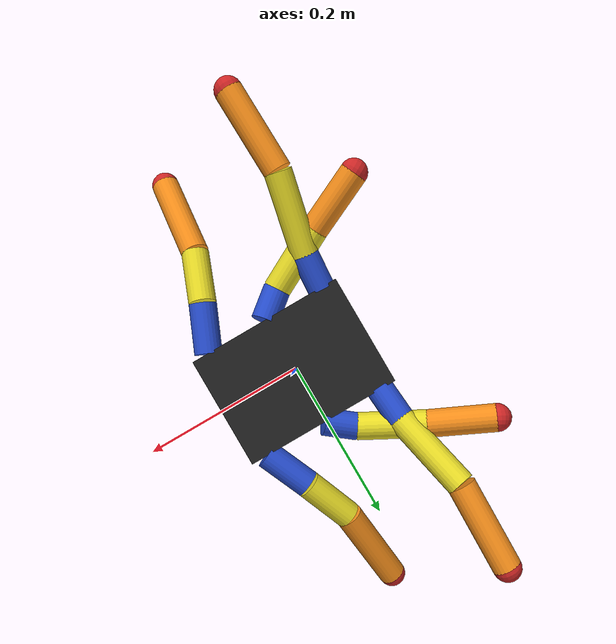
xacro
<?xml version="1.0"?>
<robot name="multi_legged_robot" xmlns:xacro="http://ros.org/wiki/xacro">

  <xacro:include filename="$(find multi_legged_description)/urdf/base/base.urdf.xacro"/>
  <xacro:include filename="$(find multi_legged_description)/urdf/leg/leg.urdf.xacro"/>
  <xacro:include filename="$(find multi_legged_description)/urdf/params/robot10.xacro"/>

  <!-- ===============  Link & Joint =============== -->
  <!-- Base -->
  <link name="base_footprint"/>
  <xacro:base parent="base_footprint"
              length="${body_length}"
              width="${body_width}"
              height="${body_height}"
              rho="${body_rho}">
  <!-- respawn point -->
	<origin xyz="0 0 ${body_height+base_clause_radius/2+LM_tibia_length+appendix_radius+0.01}"/>
  </xacro:base>

  <!-- LEG -->
  <xacro:leg prefix="LF" parent="base_link" origin_xyz="${body_length*2/5} ${body_width/2} ${-body_height/2-base_clause_radius/2}" origin_rpy="0.0 0.0 ${M_PI/2}"
             base_clause_radius="${base_clause_radius}" base_clause_length="${LF_base_clause_length}" base_clause_rpy="${LF_base_clause_rpy}" base_clause_rho="${base_clause_rho}" base_clause_torque="${base_clause_torque}" base_clause_velocity="${base_clause_velocity}"
             thigh_radius="${thigh_radius}" thigh_length="${LF_thigh_length}" thigh_rpy="${LF_thigh_rpy}" thigh_rho="${thigh_rho}" thigh_torque="${thigh_torque}" thigh_velocity="${thigh_velocity}"
             tibia_radius="${tibia_radius}" tibia_length="${LF_tibia_length}" tibia_rpy="${LF_tibia_rpy}" tibia_rho="${tibia_rho}" tibia_torque="${tibia_torque}" tibia_velocity="${tibia_velocity}"
             appendix_radius="${appendix_radius}" appendix_rho="${appendix_rho}"/>
  <xacro:leg prefix="LM" parent="base_link" origin_xyz="0.0 ${body_width/2} ${-body_height/2-base_clause_radius/2}" origin_rpy="0.0 0.0 ${M_PI/2}"
             base_clause_radius="${base_clause_radius}" base_clause_length="${LM_base_clause_length}" base_clause_rpy="${LM_base_clause_rpy}" base_clause_rho="${base_clause_rho}" base_clause_torque="${base_clause_torque}" base_clause_velocity="${base_clause_velocity}"
             thigh_radius="${thigh_radius}" thigh_length="${LM_thigh_length}" thigh_rpy="${LM_thigh_rpy}" thigh_rho="${thigh_rho}" thigh_torque="${thigh_torque}" thigh_velocity="${thigh_velocity}"
             tibia_radius="${tibia_radius}" tibia_length="${LM_tibia_length}" tibia_rpy="${LM_tibia_rpy}" tibia_rho="${tibia_rho}" tibia_torque="${tibia_torque}" tibia_velocity="${tibia_velocity}"
             appendix_radius="${appendix_radius}" appendix_rho="${appendix_rho}"/>
	<xacro:leg prefix="LH" parent="base_link" origin_xyz="${-body_length*2/5} ${body_width/2} ${-body_height/2-base_clause_radius/2}" origin_rpy="0.0 0.0 ${M_PI/2}"
             base_clause_radius="${base_clause_radius}" base_clause_length="${LH_base_clause_length}" base_clause_rpy="${LH_base_clause_rpy}" base_clause_rho="${base_clause_rho}" base_clause_torque="${base_clause_torque}" base_clause_velocity="${base_clause_velocity}"
             thigh_radius="${thigh_radius}" thigh_length="${LH_thigh_length}" thigh_rpy="${LH_thigh_rpy}" thigh_rho="${thigh_rho}" thigh_torque="${thigh_torque}" thigh_velocity="${thigh_velocity}"
             tibia_radius="${tibia_radius}" tibia_length="${LH_tibia_length}" tibia_rpy="${LH_tibia_rpy}" tibia_rho="${tibia_rho}" tibia_torque="${tibia_torque}" tibia_velocity="${tibia_velocity}"
             appendix_radius="${appendix_radius}" appendix_rho="${appendix_rho}"/>

  <xacro:leg prefix="RF" parent="base_link" origin_xyz="${body_length*2/5} ${-body_width/2} ${-body_height/2-base_clause_radius/2}" origin_rpy="0.0 0.0 ${-M_PI/2}"
             base_clause_radius="${base_clause_radius}" base_clause_length="${RF_base_clause_length}" base_clause_rpy="${RF_base_clause_rpy}" base_clause_rho="${base_clause_rho}" base_clause_torque="${base_clause_torque}" base_clause_velocity="${base_clause_velocity}"
             thigh_radius="${thigh_radius}" thigh_length="${RF_thigh_length}" thigh_rpy="${RF_thigh_rpy}" thigh_rho="${thigh_rho}" thigh_torque="${thigh_torque}" thigh_velocity="${thigh_velocity}"
             tibia_radius="${tibia_radius}" tibia_length="${RF_tibia_length}" tibia_rpy="${RF_tibia_rpy}" tibia_rho="${tibia_rho}" tibia_torque="${tibia_torque}" tibia_velocity="${tibia_velocity}"
             appendix_radius="${appendix_radius}" appendix_rho="${appendix_rho}"/>
  <xacro:leg prefix="RM" parent="base_link" origin_xyz="0.0 ${-body_width/2} ${-body_height/2-base_clause_radius/2}" origin_rpy="0.0 0.0 ${-M_PI/2}"
             base_clause_radius="${base_clause_radius}" base_clause_length="${RM_base_clause_length}" base_clause_rpy="${RM_base_clause_rpy}" base_clause_rho="${base_clause_rho}" base_clause_torque="${base_clause_torque}" base_clause_velocity="${base_clause_velocity}"
             thigh_radius="${thigh_radius}" thigh_length="${RM_thigh_length}" thigh_rpy="${RM_thigh_rpy}" thigh_rho="${thigh_rho}" thigh_torque="${thigh_torque}" thigh_velocity="${thigh_velocity}"
             tibia_radius="${tibia_radius}" tibia_length="${RM_tibia_length}" tibia_rpy="${RM_tibia_rpy}" tibia_rho="${tibia_rho}" tibia_torque="${tibia_torque}" tibia_velocity="${tibia_velocity}"
             appendix_radius="${appendix_radius}" appendix_rho="${appendix_rho}"/>
	<xacro:leg prefix="RH" parent="base_link" origin_xyz="${-body_length*2/5} ${-body_width/2} ${-body_height/2-base_clause_radius/2}" origin_rpy="0.0 0.0 ${-M_PI/2}"
             base_clause_radius="${base_clause_radius}" base_clause_length="${RH_base_clause_length}" base_clause_rpy="${RH_base_clause_rpy}" base_clause_rho="${base_clause_rho}" base_clause_torque="${base_clause_torque}" base_clause_velocity="${base_clause_velocity}"
             thigh_radius="${thigh_radius}" thigh_length="${RH_thigh_length}" thigh_rpy="${RH_thigh_rpy}" thigh_rho="${thigh_rho}" thigh_torque="${thigh_torque}" thigh_velocity="${thigh_velocity}"
             tibia_radius="${tibia_radius}" tibia_length="${RH_tibia_length}" tibia_rpy="${RH_tibia_rpy}" tibia_rho="${tibia_rho}" tibia_torque="${tibia_torque}" tibia_velocity="${tibia_velocity}"
             appendix_radius="${appendix_radius}" appendix_rho="${appendix_rho}"/>

  <!-- =============== Gazebo =============== -->
  <gazebo>
    <plugin name="gazebo_ros_control" filename="libgazebo_ros_control.so">
    </plugin>
  </gazebo>

  <!-- Base -->
  <xacro:base_gazebo/>

</robot>

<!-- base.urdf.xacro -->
<robot xmlns:xacro="http://ros.org/wiki/xacro">

  <xacro:include filename="$(find multi_legged_description)/urdf/base/base.gazebo.xacro"/>

  <xacro:macro name="base" params="parent width height length rho *joint_origin">
	<joint name="base_link_joint" type="fixed">
	  <insert_block name="joint_origin"/>
	  <parent link="${parent}"/>
	  <child link="base_link"/>
	</joint>

	<link name="base_link">
	  <visual>
        <geometry>
            <box size="${length} ${width} ${height}"/>
        </geometry>
	  </visual>
	  <collision>
        <geometry>
            <box size="${length} ${width} ${height}"/>
        </geometry>
	  </collision>
	  <inertial>
		<mass value="${rho * length * width * height}"/>
		<inertia
			ixx="${rho * length * width * height / 12.0 * (width * width + height * height)}" ixy="0.0" ixz="0.0"
			iyy="${rho * length * width * height / 12.0 * (height * height + length * length)}" iyz="0.0"
			izz="${rho * length * width * height / 12.0 * (length * length + width * width)}"/>
	  </inertial>
	</link>
  </xacro:macro>

</robot>

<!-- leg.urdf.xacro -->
<robot xmlns:xacro="http://ros.org/wiki/xacro">
  <xacro:include filename="$(find multi_legged_description)/urdf/coxa/coxa.urdf.xacro"/>
  <xacro:include filename="$(find multi_legged_description)/urdf/base_clause/base_clause.urdf.xacro"/>
  <xacro:include filename="$(find multi_legged_description)/urdf/thigh/thigh.urdf.xacro"/>
  <xacro:include filename="$(find multi_legged_description)/urdf/tibia/tibia.urdf.xacro"/>
  <xacro:include filename="$(find multi_legged_description)/urdf/appendix/appendix.urdf.xacro"/>

  <xacro:macro name="leg" params="prefix parent origin_xyz origin_rpy
                                  base_clause_radius base_clause_length base_clause_rpy base_clause_rho base_clause_torque base_clause_velocity
                                  thigh_radius thigh_length thigh_rpy thigh_rho thigh_torque thigh_velocity
                                  tibia_radius tibia_length tibia_rpy tibia_rho tibia_torque tibia_velocity
                                  appendix_radius appendix_rho">
    <!-- ===============  Link & Joint =============== -->
    <xacro:coxa prefix="${prefix}" parent="${parent}">
    <origin xyz="${origin_xyz}" rpy="${origin_rpy}"/>
    <axis xyz="0 0 1"/>
    </xacro:coxa>

    <xacro:base_clause prefix="${prefix}"
                                          radius="${base_clause_radius}"
                                          length="${base_clause_length}"
                                          rho="${base_clause_rho}"
                                          torque="${base_clause_torque}"
                                          velocity="${base_clause_velocity}">
    <origin xyz="0.0 0.0 0.0" rpy="${base_clause_rpy}"/>
    <axis xyz="0 0 1"/>
    </xacro:base_clause>

    <xacro:thigh prefix="${prefix}"
                 radius="${thigh_radius}"
                 length="${thigh_length}"
                 rho="${thigh_rho}"
                 torque="${thigh_torque}"
                 velocity="${thigh_velocity}">
    <origin xyz="${base_clause_length} 0.0 0.0" rpy="${thigh_rpy}"/>
    <axis xyz="0 0 1"/>
    </xacro:thigh>

    <xacro:tibia prefix="${prefix}"
                 radius="${tibia_radius}"
                 length="${tibia_length}"
                 rho="${tibia_rho}"
                 torque="${tibia_torque}"
                 velocity="${tibia_velocity}">
    <origin xyz="${thigh_length} 0.0 0.0" rpy="${tibia_rpy}"/>
    <axis xyz="0 0 1"/>
    </xacro:tibia>

    <xacro:appendix prefix="${prefix}"
                    radius="${appendix_radius}"
                    rho="${appendix_rho}">
    <origin xyz="${tibia_length} 0.0 0.0" rpy="0.0 0.0 0.0"/>
    <axis xyz="0 0 1"/>
    </xacro:appendix>

    <!-- ===============  Transmission =============== -->
    <xacro:coxa_trans prefix="${prefix}"/>
    <xacro:base_clause_trans prefix="${prefix}"/>
    <xacro:thigh_trans prefix="${prefix}"/>
    <xacro:tibia_trans prefix="${prefix}"/>
    <xacro:appendix_trans prefix="${prefix}"/>

    <!-- =============== Gazebo =============== -->
    <xacro:coxa_gazebo prefix="${prefix}"/>
    <xacro:base_clause_gazebo prefix="${prefix}"/>
    <xacro:thigh_gazebo prefix="${prefix}"/>
    <xacro:tibia_gazebo prefix="${prefix}"/>
    <xacro:appendix_gazebo prefix="${prefix}"/>

  </xacro:macro>
</robot>

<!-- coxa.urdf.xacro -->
<robot xmlns:xacro="http://ros.org/wiki/xacro">

  <xacro:include filename="$(find multi_legged_description)/urdf/common.xacro"/>
  <xacro:include filename="$(find multi_legged_description)/urdf/coxa/coxa.transmission.xacro"/>
  <xacro:include filename="$(find multi_legged_description)/urdf/coxa/coxa.gazebo.xacro"/>

  <xacro:macro name="coxa" params="prefix parent *joint_origin *joint_axis">
	<joint name="${prefix}_coxa_joint" type="fixed">
	  <insert_block name="joint_origin"/>
	  <parent link="${parent}"/>
	  <child link="${prefix}_coxa_link"/>
      <origin xyz="0 0 0" rpy="0 0 0"/>
      <limit lower="-0.0" upper="0.0" effort="100" velocity="100" />
	  <insert_block name="joint_axis"/>
	</joint>
	<link name="${prefix}_coxa_link">
      <visual>
        <origin xyz="0 0 0" rpy="0 ${M_PI/2} 0"/>
        <geometry>
            <cylinder radius="0.00001" length="0.00001"/>
        </geometry>
	  </visual>
	  <collision>
		<origin xyz="0 0 0" rpy="0 ${M_PI/2} 0"/>
		<geometry>
		  <cylinder radius="0.00001" length="0.00001"/>
		</geometry>
	  </collision>
	  <inertial>
		<origin xyz="0 0 0" rpy="0 ${M_PI/2} 0"/>
		<cylinder_inertial mass="0.00001"
						   radius="0.00001" length="0.00001"/>
	  </inertial>
	</link>
  </xacro:macro>

</robot>

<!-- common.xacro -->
<robot xmlns:xacro="http://ros.org/wiki/xacro">
  <property name="M_PI" value="3.14159274"/>

  <xacro:macro name="cylinder_inertial" params="mass radius length">
	<mass value="${mass}"/>
	<inertia ixx="${(radius*radius/4.0+length*length/12.0)*mass}" ixy="0" ixz="0"
			 iyy="${(radius*radius/4.0+length*length/12.0)*mass}" iyz="0"
			 izz="${(mass*radius*radius)/2.0}" />
  </xacro:macro>

  <xacro:macro name="box_inertial" params="mass height width depth">
	<mass value="${mass}"/>
	<inertia ixx="${mass*(width*width+depth*depth)/12.0}" ixy="0" ixz="0"
			 iyy="${mass*(height*height+depth*depth)/12.0}" iyz="0"
			 izz="${mass*(height*height+width*width)/12.0}" />
  </xacro:macro>
</robot>

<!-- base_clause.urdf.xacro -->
<robot xmlns:xacro="http://ros.org/wiki/xacro">

  <xacro:include filename="$(find multi_legged_description)/urdf/common.xacro"/>
  <xacro:include filename="$(find multi_legged_description)/urdf/base_clause/base_clause.transmission.xacro"/>
  <xacro:include filename="$(find multi_legged_description)/urdf/base_clause/base_clause.gazebo.xacro"/>

  <xacro:macro name="base_clause" params="prefix radius length rho torque velocity *joint_origin *joint_axis">
	<joint name="${prefix}_base_clause_joint" type="revolute">
	  <insert_block name="joint_origin"/>
	  <parent link="${prefix}_coxa_link"/>
	  <child link="${prefix}_base_clause_link"/>
      <origin xyz="0 0 0" rpy="0 0 0"/>
	  <limit lower="${-M_PI}" upper="${M_PI}" effort="${torque}" velocity="${velocity}" />
	  <insert_block name="joint_axis"/>
	</joint>

	<link name="${prefix}_base_clause_link">
	  <visual>
        <origin xyz="${length/2} 0 0" rpy="0 ${M_PI/2} 0"/>
        <geometry>
            <cylinder radius="${radius}" length="${length}"/>
        </geometry>
	  </visual>
	  <collision>
		<origin xyz="${length/2} 0 0" rpy="0 ${M_PI/2} 0"/>
		<geometry>
		  <cylinder radius="${radius}" length="${length}"/>
		</geometry>
	  </collision>
	  <inertial>
		<origin xyz="${length/2} 0 0" rpy="0 ${M_PI/2} 0"/>
		<cylinder_inertial mass="${rho * radius * radius * M_PI * length}"
						   radius="${radius}" length="${length}"/>
	  </inertial>
	</link>
  </xacro:macro>

</robot>

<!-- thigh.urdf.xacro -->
<robot xmlns:xacro="http://ros.org/wiki/xacro">

  <xacro:include filename="$(find multi_legged_description)/urdf/common.xacro"/>
  <xacro:include filename="$(find multi_legged_description)/urdf/thigh/thigh.transmission.xacro"/>
  <xacro:include filename="$(find multi_legged_description)/urdf/thigh/thigh.gazebo.xacro"/>

  <xacro:macro name="thigh" params="prefix radius length rho torque velocity *joint_origin *joint_axis">
	<joint name="${prefix}_thigh_joint" type="revolute">
	  <insert_block name="joint_origin"/>
	  <parent link="${prefix}_base_clause_link"/>
	  <child link="${prefix}_thigh_link"/>
      <origin xyz="0 0 0" rpy="0 0 0"/>
	  <limit lower="${-M_PI}" upper="${M_PI}" effort="${torque}" velocity="${velocity}" />
	  <insert_block name="joint_axis"/>
	</joint>
	<link name="${prefix}_thigh_link">
	  <visual>
        <origin xyz="${length/2} 0 0" rpy="0 ${M_PI/2} 0"/>
        <geometry>
            <cylinder radius="${radius}" length="${length}"/>
        </geometry>
	  </visual>
	  <collision>
		<origin xyz="${length/2} 0 0" rpy="0 ${M_PI/2} 0"/>
		<geometry>
		  <cylinder radius="${radius}" length="${length}"/>
		</geometry>
	  </collision>
	  <inertial>
		<origin xyz="${length/2} 0 0" rpy="0 ${M_PI/2} 0"/>
		<cylinder_inertial mass="${rho * radius * radius * M_PI * length}"
						   radius="${radius}" length="${length}"/>
	  </inertial>
	</link>
  </xacro:macro>

</robot>

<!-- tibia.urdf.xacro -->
<robot xmlns:xacro="http://ros.org/wiki/xacro">

  <xacro:include filename="$(find multi_legged_description)/urdf/common.xacro"/>
  <xacro:include filename="$(find multi_legged_description)/urdf/tibia/tibia.transmission.xacro"/>
  <xacro:include filename="$(find multi_legged_description)/urdf/tibia/tibia.gazebo.xacro"/>

  <xacro:macro name="tibia" params="prefix radius length rho torque velocity *joint_origin *joint_axis">
	<joint name="${prefix}_tibia_joint" type="revolute">
	  <insert_block name="joint_origin"/>
	  <parent link="${prefix}_thigh_link"/>
	  <child link="${prefix}_tibia_link"/>
      <origin xyz="0 0 0" rpy="0 0 0"/>
	  <limit lower="${-M_PI}" upper="${M_PI}" effort="${torque}" velocity="${velocity}" />
	  <insert_block name="joint_axis"/>
	</joint>
	<link name="${prefix}_tibia_link">
	  <visual>
        <origin xyz="${length/2} 0 0" rpy="0 ${M_PI/2} 0"/>
        <geometry>
            <cylinder radius="${radius}" length="${length}"/>
        </geometry>
	  </visual>
	  <collision>
		<origin xyz="${length/2} 0 0" rpy="0 ${M_PI/2} 0"/>
		<geometry>
		  <cylinder radius="${radius}" length="${length}"/>
		</geometry>
	  </collision>
	  <inertial>
		<origin xyz="${length/2} 0 0" rpy="0 ${M_PI/2} 0"/>
		<cylinder_inertial mass="${rho * radius * radius * M_PI * length}"
						   radius="${radius}" length="${length}"/>
	  </inertial>
	</link>
  </xacro:macro>

</robot>

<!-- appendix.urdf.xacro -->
<robot xmlns:xacro="http://ros.org/wiki/xacro">

  <xacro:include filename="$(find multi_legged_description)/urdf/common.xacro"/>
  <xacro:include filename="$(find multi_legged_description)/urdf/appendix/appendix.transmission.xacro"/>
  <xacro:include filename="$(find multi_legged_description)/urdf/appendix/appendix.gazebo.xacro"/>

  <xacro:macro name="appendix" params="prefix radius rho *joint_origin *joint_axis">
	<joint name="${prefix}_appendix_joint" type="revolute">
	  <insert_block name="joint_origin"/>
	  <parent link="${prefix}_tibia_link"/>
	  <child link="${prefix}_appendix_link"/>
      <origin xyz="0 0 0" rpy="0 0 0"/>
	  <limit lower="-0.0" upper="0.0" effort="100" velocity="100" />
	  <insert_block name="joint_axis"/>
	</joint>

	<link name="${prefix}_appendix_link">
	  <visual>
        <origin xyz="0 0 0" rpy="0 0 0"/>
        <geometry>
            <sphere radius="${radius}"/>
        </geometry>>
	  </visual>
	  <collision>
		<origin xyz="0 0 0" rpy="0 0 0"/>
		<geometry>
		  <sphere radius="${radius}"/>
		</geometry>
	  </collision>
	  <inertial>
		<origin xyz="0 0 0" rpy="0 0 0"/>
        <mass value="${rho * 0.75 * M_PI * radius * radius}"/>
		<inertia
			ixx="${0.4 * rho * 0.75 * M_PI * radius * radius * radius * radius}" ixy="0.0" ixz="0.0"
			iyy="${0.4 * rho * 0.75 * M_PI * radius * radius * radius * radius}" iyz="0.0"
			izz="${0.4 * rho * 0.75 * M_PI * radius * radius * radius * radius}"/>
      </inertial>
	</link>
  </xacro:macro>

</robot>

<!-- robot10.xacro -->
<robot xmlns:xacro="http://ros.org/wiki/xacro">
  <property name="body_length" value="0.175"/>
  <property name="body_width" value="0.125"/>
  <property name="body_height" value="0.005"/>
  <property name="body_rho" value="8283"/>
  <property name="LF_base_clause_length" value="0.054634421643"/>
  <property name="LF_thigh_length" value="0.0593065690115"/>
  <property name="LF_tibia_length" value="0.0973534155649"/>
  <property name="RF_base_clause_length" value="0.054634421643"/>
  <property name="RF_thigh_length" value="0.0593065690115"/>
  <property name="RF_tibia_length" value="0.0973534155649"/>
  <property name="LM_base_clause_length" value="0.0373516964802"/>
  <property name="LM_thigh_length" value="0.0757412902605"/>
  <property name="LM_tibia_length" value="0.0717533438352"/>
  <property name="RM_base_clause_length" value="0.0373516964802"/>
  <property name="RM_thigh_length" value="0.0757412902605"/>
  <property name="RM_tibia_length" value="0.0717533438352"/>
  <property name="LH_base_clause_length" value="0.0398010309481"/>
  <property name="LH_thigh_length" value="0.0910728342166"/>
  <property name="LH_tibia_length" value="0.0952965651973"/>
  <property name="RH_base_clause_length" value="0.0398010309481"/>
  <property name="RH_thigh_length" value="0.0910728342166"/>
  <property name="RH_tibia_length" value="0.0952965651973"/>
  <property name="base_clause_radius" value="0.015"/>
  <property name="thigh_radius" value="0.015"/>
  <property name="tibia_radius" value="0.015"/>
  <property name="appendix_radius" value="0.015"/>
  <property name="base_clause_rho" value="1240"/>
  <property name="thigh_rho" value="1240"/>
  <property name="tibia_rho" value="1240"/>
  <property name="appendix_rho" value="1240"/>
  <property name="base_clause_torque" value="3"/>
  <property name="thigh_torque" value="3"/>
  <property name="tibia_torque" value="3"/>
  <property name="base_clause_velocity" value="100"/>
  <property name="thigh_velocity" value="100"/>
  <property name="tibia_velocity" value="100"/>
  <property name="F_base_clause_roll" value="0.183065179495"/>
  <property name="F_base_clause_pitch" value="0.0410090505137"/>
  <property name="F_base_clause_yaw" value="0.408321153537"/>
  <property name="F_thigh_roll" value="-0.894950381701"/>
  <property name="F_thigh_pitch" value="0.198955368469"/>
  <property name="F_thigh_yaw" value="-0.098531166954"/>
  <property name="F_tibia_roll" value="-0.407641287553"/>
  <property name="F_tibia_pitch" value="0.266671217044"/>
  <property name="F_tibia_yaw" value="-0.102580320652"/>
  <property name="M_base_clause_roll" value="0.358366695777"/>
  <property name="M_base_clause_pitch" value="0.163904242182"/>
  <property name="M_base_clause_yaw" value="0.886433521471"/>
  <property name="M_thigh_roll" value="-1.59487308848"/>
  <property name="M_thigh_pitch" value="-0.257919612493"/>
  <property name="M_thigh_yaw" value="0.338508498749"/>
  <property name="M_tibia_roll" value="-0.583986951684"/>
  <property name="M_tibia_pitch" value="-0.0549254420861"/>
  <property name="M_tibia_yaw" value="-0.0071146147784"/>
  <property name="H_base_clause_roll" value="-0.141047210525"/>
  <property name="H_base_clause_pitch" value="-0.208569678403"/>
  <property name="H_base_clause_yaw" value="0.0653791117967"/>
  <property name="H_thigh_roll" value="-1.77997852299"/>
  <property name="H_thigh_pitch" value="-0.115533061199"/>
  <property name="H_thigh_yaw" value="0.120335985888"/>
  <property name="H_tibia_roll" value="0.468921149777"/>
  <property name="H_tibia_pitch" value="0.12176861984"/>
  <property name="H_tibia_yaw" value="0.324877294426"/>
  <property name="LF_base_clause_rpy" value="${F_base_clause_roll} ${F_base_clause_pitch} ${F_base_clause_yaw}"/>
  <property name="LF_thigh_rpy" value="${F_thigh_roll} ${F_thigh_pitch} ${F_thigh_yaw}"/>
  <property name="LF_tibia_rpy" value="${F_tibia_roll} ${F_tibia_pitch} ${F_tibia_yaw}"/>
  <property name="LM_base_clause_rpy" value="${M_base_clause_roll} ${M_base_clause_pitch} ${M_base_clause_yaw}"/>
  <property name="LM_thigh_rpy" value="${M_thigh_roll} ${M_thigh_pitch} ${M_thigh_yaw}"/>
  <property name="LM_tibia_rpy" value="${M_tibia_roll} ${M_tibia_pitch} ${M_tibia_yaw}"/>
  <property name="LH_base_clause_rpy" value="${H_base_clause_roll} ${H_base_clause_pitch} ${H_base_clause_yaw}"/>
  <property name="LH_thigh_rpy" value="${H_thigh_roll} ${H_thigh_pitch} ${H_thigh_yaw}"/>
  <property name="LH_tibia_rpy" value="${H_tibia_roll} ${H_tibia_pitch} ${H_tibia_yaw}"/>
  <property name="RF_base_clause_rpy" value="${-F_base_clause_roll} ${F_base_clause_pitch} ${-F_base_clause_yaw}"/>
  <property name="RF_thigh_rpy" value="${-F_thigh_roll} ${F_thigh_pitch} ${-F_thigh_yaw}"/>
  <property name="RF_tibia_rpy" value="${-F_tibia_roll} ${F_tibia_pitch} ${-F_tibia_yaw}"/>
  <property name="RM_base_clause_rpy" value="${-M_base_clause_roll} ${M_base_clause_pitch} ${-M_base_clause_yaw}"/>
  <property name="RM_thigh_rpy" value="${-M_thigh_roll} ${M_thigh_pitch} ${-M_thigh_yaw}"/>
  <property name="RM_tibia_rpy" value="${-M_tibia_roll} ${M_tibia_pitch} ${-M_tibia_yaw}"/>
  <property name="RH_base_clause_rpy" value="${-H_base_clause_roll} ${H_base_clause_pitch} ${-H_base_clause_yaw}"/>
  <property name="RH_thigh_rpy" value="${-H_thigh_roll} ${H_thigh_pitch} ${-H_thigh_yaw}"/>
  <property name="RH_tibia_rpy" value="${-H_tibia_roll} ${H_tibia_pitch} ${-H_tibia_yaw}"/>
  <property name="F_distance" value="0.1"/>
  <property name="M_distance" value="0.1"/>
  <property name="H_distance" value="0.1"/>
</robot>
